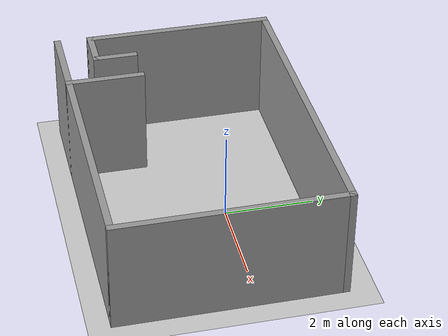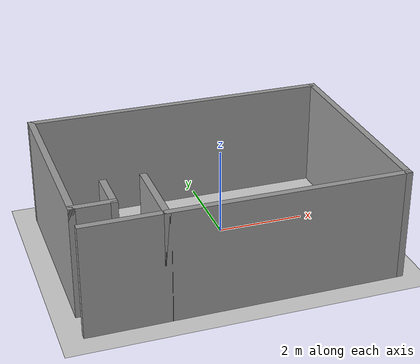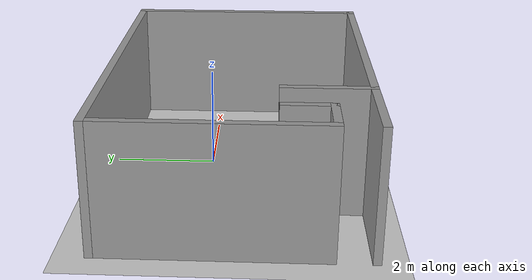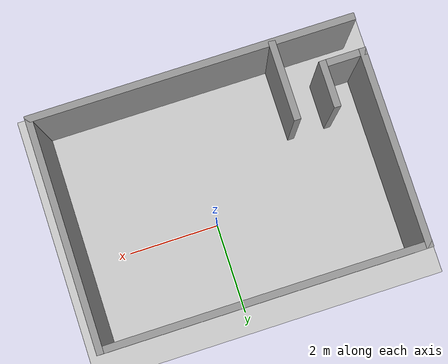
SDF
<?xml version="1.0" ?>
<sdf version="1.7">
  <world name="default">

    <!-- Sun -->
    <light name="sun" type="directional">
      <cast_shadows>1</cast_shadows>
      <pose>0 0 10 0 -0 0</pose>
      <diffuse>0.8 0.8 0.8 1</diffuse>
      <specular>0.2 0.2 0.2 1</specular>
      <attenuation>
        <range>1000</range>
        <constant>0.9</constant>
        <linear>0.01</linear>
        <quadratic>0.001</quadratic>
      </attenuation>
      <direction>-0.5 0.1 -0.9</direction>
    </light>

    <!-- Ground Plane -->
    <model name="ground_plane">
      <static>1</static>
      <link name="link">
        <collision name="collision">
          <geometry>
            <plane>
              <normal>0 0 1</normal>
              <size>100 100</size>
            </plane>
          </geometry>
          <surface>
            <friction>
              <ode>
                <mu>100</mu>
                <mu2>50</mu2>
              </ode>
            </friction>
          </surface>
        </collision>
        <visual name="visual">
          <cast_shadows>0</cast_shadows>
          <geometry>
            <plane>
              <normal>0 0 1</normal>
              <size>100 100</size>
            </plane>
          </geometry>
          <material>
            <script>
              <uri>file://media/materials/scripts/gazebo.material</uri>
              <name>Gazebo/Grey</name>
            </script>
          </material>
        </visual>
      </link>
    </model>

    <!-- Physics & Environment -->
    <gravity>0 0 -9.8</gravity>
    <magnetic_field>6e-06 2.3e-05 -4.2e-05</magnetic_field>
    <atmosphere type="adiabatic"/>
    <physics type="ode">
      <max_step_size>0.001</max_step_size>
      <real_time_factor>1</real_time_factor>
      <real_time_update_rate>1000</real_time_update_rate>
    </physics>
    <scene>
      <ambient>0.4 0.4 0.4 1</ambient>
      <background>0.7 0.7 0.7 1</background>
      <shadows>1</shadows>
    </scene>

    <model name="building">
      <static>1</static>
      <pose>-0.42642 -0.593843 0 0 0 0</pose>

      <link name="Wall_0">
        <collision name="Wall_0_Collision">
          <geometry>
            <box><size>7 0.15 2.5</size></box>
          </geometry>
          <pose>0 0 1.25 0 0 0</pose>
        </collision>
        <visual name="Wall_0_Visual">
          <pose>0 0 1.25 0 0 0</pose>
          <geometry>
            <box><size>7 0.15 2.5</size></box>
          </geometry>
          <material>
            <script>
              <uri>file://media/materials/scripts/gazebo.material</uri>
              <name>Gazebo/Grey</name>
            </script>
            <ambient>1 1 1 1</ambient>
          </material>
        </visual>
        <pose>0 -2.425 0 0 0 0</pose>
      </link>

      <link name="Wall_1">
        <collision name="Wall_1_Collision">
          <geometry>
            <box><size>5 0.15 2.5</size></box>
          </geometry>
          <pose>0 0 1.25 0 0 0</pose>
        </collision>
        <visual name="Wall_1_Visual">
          <pose>0 0 1.25 0 0 0</pose>
          <geometry>
            <box><size>5 0.15 2.5</size></box>
          </geometry>
          <material>
            <script>
              <uri>file://media/materials/scripts/gazebo.material</uri>
              <name>Gazebo/Grey</name>
            </script>
            <ambient>1 1 1 1</ambient>
          </material>
        </visual>
        <pose>3.425 0 0 0 0 1.5708</pose>
      </link>

      <link name="Wall_2">
        <collision name="Wall_2_Collision">
          <geometry>
            <box><size>7 0.15 2.5</size></box>
          </geometry>
          <pose>0 0 1.25 0 0 0</pose>
        </collision>
        <visual name="Wall_2_Visual">
          <pose>0 0 1.25 0 0 0</pose>
          <geometry>
            <box><size>7 0.15 2.5</size></box>
          </geometry>
          <material>
            <script>
              <uri>file://media/materials/scripts/gazebo.material</uri>
              <name>Gazebo/Grey</name>
            </script>
            <ambient>1 1 1 1</ambient>
          </material>
        </visual>
        <pose>0 2.425 0 0 0 3.14159</pose>
      </link>

      <link name="Wall_3">
        <collision name="Wall_3_Collision">
          <geometry>
            <box><size>4.25 0.15 2.5</size></box>
          </geometry>
          <pose>0 0 1.25 0 0 0</pose>
        </collision>
        <visual name="Wall_3_Visual">
          <pose>0 0 1.25 0 0 0</pose>
          <geometry>
            <box><size>4.25 0.15 2.5</size></box>
          </geometry>
          <material>
            <script>
              <uri>file://media/materials/scripts/gazebo.material</uri>
              <name>Gazebo/Grey</name>
            </script>
            <ambient>1 1 1 1</ambient>
          </material>
        </visual>
        <pose>-3.425 0.375 0 0 0 -1.5708</pose>
      </link>

      <link name="Wall_4">
        <collision name="Wall_4_Collision">
          <geometry>
            <box><size>1 0.15 2.5</size></box>
          </geometry>
          <pose>0 0 1.25 0 0 0</pose>
        </collision>
        <visual name="Wall_4_Visual">
          <pose>0 0 1.25 0 0 0</pose>
          <geometry>
            <box><size>1 0.15 2.5</size></box>
          </geometry>
          <material>
            <script>
              <uri>file://media/materials/scripts/gazebo.material</uri>
              <name>Gazebo/Grey</name>
            </script>
            <ambient>1 1 1 1</ambient>
          </material>
        </visual>
        <pose>-3 -1.675 0 0 0 0</pose>
      </link>

      <link name="Wall_5">
        <collision name="Wall_5_Collision">
          <geometry>
            <box><size>1 0.15 2.5</size></box>
          </geometry>
          <pose>0 0 1.25 0 0 0</pose>
        </collision>
        <visual name="Wall_5_Visual">
          <pose>0 0 1.25 0 0 0</pose>
          <geometry>
            <box><size>1 0.15 2.5</size></box>
          </geometry>
          <material>
            <script>
              <uri>file://media/materials/scripts/gazebo.material</uri>
              <name>Gazebo/Grey</name>
            </script>
            <ambient>1 1 1 1</ambient>
          </material>
        </visual>
        <pose>-2.575 -1.25 0 0 0 1.5708</pose>
      </link>

      <link name="Wall_7">
        <collision name="Wall_7_Collision">
          <geometry>
            <box><size>1.75 0.15 2.5</size></box>
          </geometry>
          <pose>0 0 1.25 0 0 0</pose>
        </collision>
        <visual name="Wall_7_Visual">
          <pose>0 0 1.25 0 0 0</pose>
          <geometry>
            <box><size>1.75 0.15 2.5</size></box>
          </geometry>
          <material>
            <script>
              <uri>file://media/materials/scripts/gazebo.material</uri>
              <name>Gazebo/Grey</name>
            </script>
            <ambient>1 1 1 1</ambient>
          </material>
        </visual>
        <pose>-1.725 -1.625 0 0 0 -1.5708</pose>
      </link>
    </model>

    <!-- Camera Viewpoint -->
    <gui fullscreen="0">
      <camera name="user_camera">
        <pose>3.5 -2.7 5.5 0 1.08 2.79</pose>
        <view_controller>orbit</view_controller>
      </camera>
    </gui>

  </world>
</sdf>
